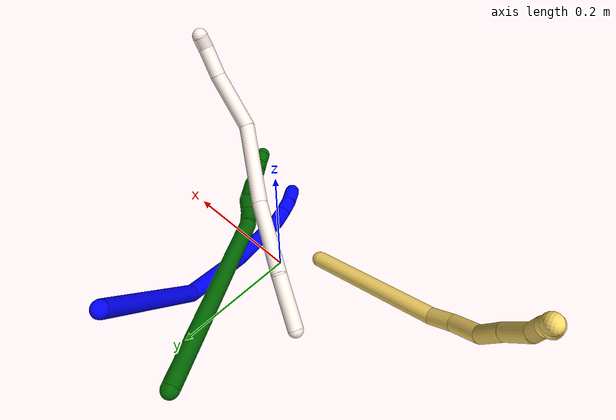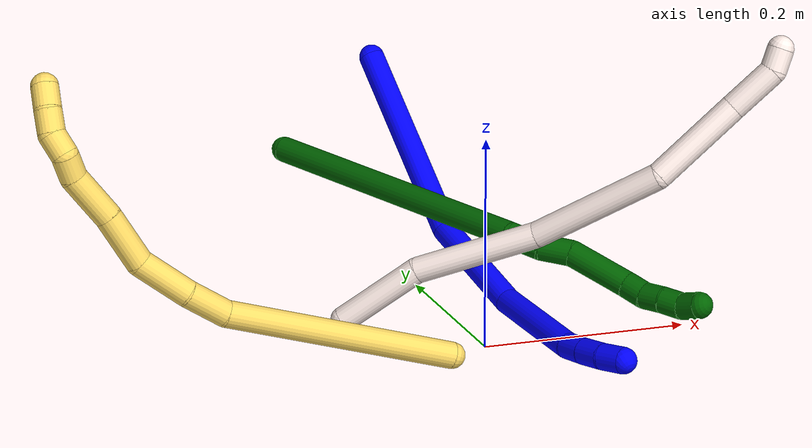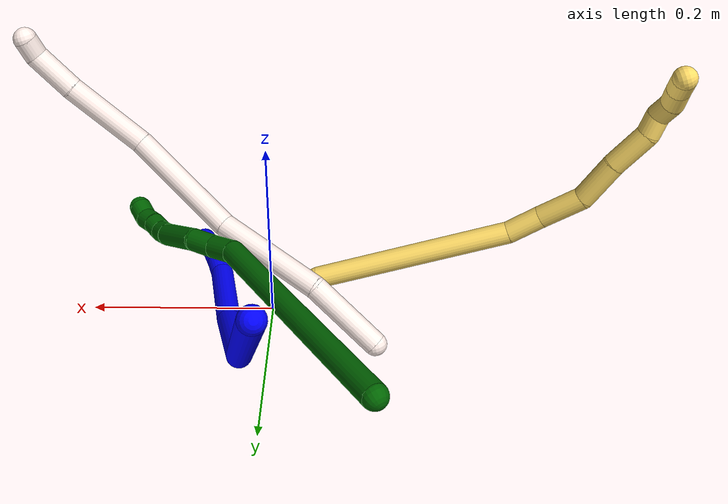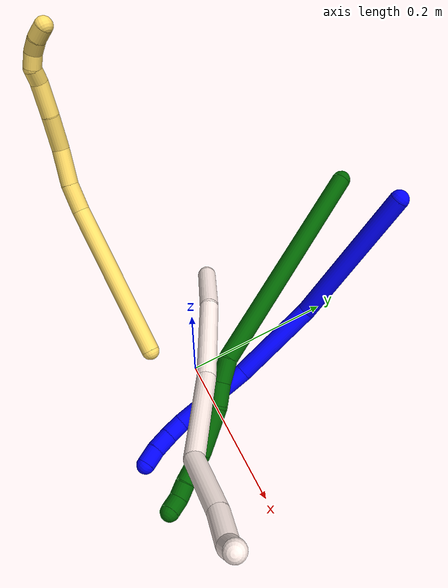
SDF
<sdf version="1.7">
 <world name="default">
  <model name="photoneo_s_sensor">
   <static>1</static>
   <pose>0 0 2 1.57079 1.57079 3.14159</pose>
   <link name="link">
    <inertial><mass>0.1</mass></inertial>
    <sensor name="sensor" type="depth">
     <update_rate>30</update_rate>
     <camera>
      <horizontal_fov>1.22</horizontal_fov>
      <image><width>1920</width><height>1200</height><format>B8G8R8</format></image>
      <clip><near>0.1</near><far>4</far></clip>
      <depth_camera><output>points</output></depth_camera>
     </camera>
     <plugin name="camera_plugin" filename="libgazebo_ros_depth_camera.so">
      <baseline>0.2</baseline>
      <alwaysOn>1</alwaysOn>
      <updateRate>0.0</updateRate>
      <cameraName>camera_ir</cameraName>
      <imageTopicName>/camera/color/image_raw</imageTopicName>
      <cameraInfoTopicName>/camera/color/camera_info</cameraInfoTopicName>
      <depthImageTopicName>/camera/depth/image_raw</depthImageTopicName>
      <depthImageCameraInfoTopicName>/camera/depth/camera_info</depthImageCameraInfoTopicName>
      <pointCloudTopicName>/camera/depth/points</pointCloudTopicName>
      <frameName>fr_optical</frameName>
      <pointCloudCutoff>0.1</pointCloudCutoff>
      <pointCloudCutoffMax>2.0</pointCloudCutoffMax>
      <distortionK1>0</distortionK1>
      <distortionK2>0</distortionK2>
      <distortionK3>0</distortionK3>
      <distortionT1>0</distortionT1>
      <distortionT2>0</distortionT2>
      <CxPrime>0</CxPrime>
      <Cx>0</Cx>
      <Cy>0</Cy>
      <focalLength>0</focalLength>
      <hackBaseline>0</hackBaseline>
     </plugin>
    </sensor>
   </link>
  </model>
  <model name="1">
   <static>0</static>
   <link name="1">
    <collision name="collision-cylinder-e_1_1_4">
     <pose>-0.007458 0.019913 -0.097555 -2.94024 -0.074769 0.70919</pose>
     <geometry><cylinder><radius>0.0125</radius><length>0.199692</length></cylinder></geometry>
     <surface>
      <friction><ode><mu>1.16</mu><mu2>1.16</mu2><slip1>0</slip1><slip2>0</slip2></ode></friction>
      <contact><ode><kp>1e+06</kp><kd>1</kd><max_vel>0</max_vel><min_depth>0.001</min_depth></ode></contact>
     </surface>
    </collision>
    <visual name="visual-cylinder-e_1_1_4">
     <pose>-0.007458 0.019913 -0.097555 -2.94024 -0.074769 0.70919</pose>
     <geometry><cylinder><radius>0.0125</radius><length>0.199692</length></cylinder></geometry>
     <material><ambient>0 0 1 1</ambient></material>
    </visual>
    <collision name="collision-cylinder-e_2_4_5">
     <pose>-0.015476 0.025177 -0.253186 2.8945 -0.009333 -0.075121</pose>
     <geometry><cylinder><radius>0.0125</radius><length>0.119795</length></cylinder></geometry>
     <surface>
      <friction><ode><mu>1.16</mu><mu2>1.16</mu2><slip1>0</slip1><slip2>0</slip2></ode></friction>
      <contact><ode><kp>1e+06</kp><kd>1</kd><max_vel>0</max_vel><min_depth>0.001</min_depth></ode></contact>
     </surface>
    </collision>
    <visual name="visual-cylinder-e_2_4_5">
     <pose>-0.015476 0.025177 -0.253186 2.8945 -0.009333 -0.075121</pose>
     <geometry><cylinder><radius>0.0125</radius><length>0.119795</length></cylinder></geometry>
     <material><ambient>0 0 1 1</ambient></material>
    </visual>
    <collision name="collision-cylinder-e_3_5_6">
     <pose>-0.016112 -0.014723 -0.358857 2.65384 -0.001436 -0.005772</pose>
     <geometry><cylinder><radius>0.0125</radius><length>0.107757</length></cylinder></geometry>
     <surface>
      <friction><ode><mu>1.16</mu><mu2>1.16</mu2><slip1>0</slip1><slip2>0</slip2></ode></friction>
      <contact><ode><kp>1e+06</kp><kd>1</kd><max_vel>0</max_vel><min_depth>0.001</min_depth></ode></contact>
     </surface>
    </collision>
    <visual name="visual-cylinder-e_3_5_6">
     <pose>-0.016112 -0.014723 -0.358857 2.65384 -0.001436 -0.005772</pose>
     <geometry><cylinder><radius>0.0125</radius><length>0.107757</length></cylinder></geometry>
     <material><ambient>0 0 1 1</ambient></material>
    </visual>
    <collision name="collision-cylinder-e_4_6_7">
     <pose>-0.014472 -0.046889 -0.415995 2.51441 0.144696 0.439745</pose>
     <geometry><cylinder><radius>0.0125</radius><length>0.02382</length></cylinder></geometry>
     <surface>
      <friction><ode><mu>1.16</mu><mu2>1.16</mu2><slip1>0</slip1><slip2>0</slip2></ode></friction>
      <contact><ode><kp>1e+06</kp><kd>1</kd><max_vel>0</max_vel><min_depth>0.001</min_depth></ode></contact>
     </surface>
    </collision>
    <visual name="visual-cylinder-e_4_6_7">
     <pose>-0.014472 -0.046889 -0.415995 2.51441 0.144696 0.439745</pose>
     <geometry><cylinder><radius>0.0125</radius><length>0.02382</length></cylinder></geometry>
     <material><ambient>0 0 1 1</ambient></material>
    </visual>
    <collision name="collision-cylinder-e_5_7_8">
     <pose>-0.010173 -0.061182 -0.435459 2.50223 0.205895 0.605022</pose>
     <geometry><cylinder><radius>0.0125</radius><length>0.025259</length></cylinder></geometry>
     <surface>
      <friction><ode><mu>1.16</mu><mu2>1.16</mu2><slip1>0</slip1><slip2>0</slip2></ode></friction>
      <contact><ode><kp>1e+06</kp><kd>1</kd><max_vel>0</max_vel><min_depth>0.001</min_depth></ode></contact>
     </surface>
    </collision>
    <visual name="visual-cylinder-e_5_7_8">
     <pose>-0.010173 -0.061182 -0.435459 2.50223 0.205895 0.605022</pose>
     <geometry><cylinder><radius>0.0125</radius><length>0.025259</length></cylinder></geometry>
     <material><ambient>0 0 1 1</ambient></material>
    </visual>
    <collision name="collision-cylinder-e_6_8_2">
     <pose>-0.00339 -0.074972 -0.4544 2.52353 0.362725 1.04275</pose>
     <geometry><cylinder><radius>0.0125</radius><length>0.023678</length></cylinder></geometry>
     <surface>
      <friction><ode><mu>1.16</mu><mu2>1.16</mu2><slip1>0</slip1><slip2>0</slip2></ode></friction>
      <contact><ode><kp>1e+06</kp><kd>1</kd><max_vel>0</max_vel><min_depth>0.001</min_depth></ode></contact>
     </surface>
    </collision>
    <visual name="visual-cylinder-e_6_8_2">
     <pose>-0.00339 -0.074972 -0.4544 2.52353 0.362725 1.04275</pose>
     <geometry><cylinder><radius>0.0125</radius><length>0.023678</length></cylinder></geometry>
     <material><ambient>0 0 1 1</ambient></material>
    </visual>
    <collision name="collision-sphere-2">
     <pose>0.00081 -0.081386 -0.463421 0 -0 0</pose>
     <geometry><sphere><radius>0.0125</radius></sphere></geometry>
     <surface>
      <friction><ode><mu>1.16</mu><mu2>1.16</mu2><slip1>0</slip1><slip2>0</slip2></ode></friction>
      <contact><ode><kp>1e+06</kp><kd>1</kd><max_vel>0</max_vel><min_depth>0.001</min_depth></ode></contact>
     </surface>
    </collision>
    <visual name="visual-sphere-2">
     <pose>0.00081 -0.081386 -0.463421 0 -0 0</pose>
     <geometry><sphere><radius>0.0125</radius></sphere></geometry>
     <material><ambient>0 0 1 1</ambient></material>
    </visual>
    <collision name="collision-sphere-4">
     <pose>-0.014917 0.039826 -0.19511 0 -0 0</pose>
     <geometry><sphere><radius>0.0125</radius></sphere></geometry>
     <surface>
      <friction><ode><mu>1.16</mu><mu2>1.16</mu2><slip1>0</slip1><slip2>0</slip2></ode></friction>
      <contact><ode><kp>1e+06</kp><kd>1</kd><max_vel>0</max_vel><min_depth>0.001</min_depth></ode></contact>
     </surface>
    </collision>
    <visual name="visual-sphere-4">
     <pose>-0.014917 0.039826 -0.19511 0 -0 0</pose>
     <geometry><sphere><radius>0.0125</radius></sphere></geometry>
     <material><ambient>0 0 1 1</ambient></material>
    </visual>
    <collision name="collision-sphere-1">
     <geometry><sphere><radius>0.0125</radius></sphere></geometry>
     <surface>
      <friction><ode><mu>1.16</mu><mu2>1.16</mu2><slip1>0</slip1><slip2>0</slip2></ode></friction>
      <contact><ode><kp>1e+06</kp><kd>1</kd><max_vel>0</max_vel><min_depth>0.001</min_depth></ode></contact>
     </surface>
    </collision>
    <visual name="visual-sphere-1">
     <geometry><sphere><radius>0.0125</radius></sphere></geometry>
     <material><ambient>0 0 1 1</ambient></material>
    </visual>
    <collision name="collision-sphere-8">
     <pose>-0.007591 -0.068559 -0.44538 0 -0 0</pose>
     <geometry><sphere><radius>0.0125</radius></sphere></geometry>
     <surface>
      <friction><ode><mu>1.16</mu><mu2>1.16</mu2><slip1>0</slip1><slip2>0</slip2></ode></friction>
      <contact><ode><kp>1e+06</kp><kd>1</kd><max_vel>0</max_vel><min_depth>0.001</min_depth></ode></contact>
     </surface>
    </collision>
    <visual name="visual-sphere-8">
     <pose>-0.007591 -0.068559 -0.44538 0 -0 0</pose>
     <geometry><sphere><radius>0.0125</radius></sphere></geometry>
     <material><ambient>0 0 1 1</ambient></material>
    </visual>
    <collision name="collision-sphere-5">
     <pose>-0.016035 0.010527 -0.311262 0 -0 0</pose>
     <geometry><sphere><radius>0.0125</radius></sphere></geometry>
     <surface>
      <friction><ode><mu>1.16</mu><mu2>1.16</mu2><slip1>0</slip1><slip2>0</slip2></ode></friction>
      <contact><ode><kp>1e+06</kp><kd>1</kd><max_vel>0</max_vel><min_depth>0.001</min_depth></ode></contact>
     </surface>
    </collision>
    <visual name="visual-sphere-5">
     <pose>-0.016035 0.010527 -0.311262 0 -0 0</pose>
     <geometry><sphere><radius>0.0125</radius></sphere></geometry>
     <material><ambient>0 0 1 1</ambient></material>
    </visual>
    <collision name="collision-sphere-6">
     <pose>-0.01619 -0.039972 -0.406453 0 -0 0</pose>
     <geometry><sphere><radius>0.0125</radius></sphere></geometry>
     <surface>
      <friction><ode><mu>1.16</mu><mu2>1.16</mu2><slip1>0</slip1><slip2>0</slip2></ode></friction>
      <contact><ode><kp>1e+06</kp><kd>1</kd><max_vel>0</max_vel><min_depth>0.001</min_depth></ode></contact>
     </surface>
    </collision>
    <visual name="visual-sphere-6">
     <pose>-0.01619 -0.039972 -0.406453 0 -0 0</pose>
     <geometry><sphere><radius>0.0125</radius></sphere></geometry>
     <material><ambient>0 0 1 1</ambient></material>
    </visual>
    <collision name="collision-sphere-7">
     <pose>-0.012755 -0.053805 -0.425538 0 -0 0</pose>
     <geometry><sphere><radius>0.0125</radius></sphere></geometry>
     <surface>
      <friction><ode><mu>1.16</mu><mu2>1.16</mu2><slip1>0</slip1><slip2>0</slip2></ode></friction>
      <contact><ode><kp>1e+06</kp><kd>1</kd><max_vel>0</max_vel><min_depth>0.001</min_depth></ode></contact>
     </surface>
    </collision>
    <visual name="visual-sphere-7">
     <pose>-0.012755 -0.053805 -0.425538 0 -0 0</pose>
     <geometry><sphere><radius>0.0125</radius></sphere></geometry>
     <material><ambient>0 0 1 1</ambient></material>
    </visual>
    <inertial>
     <pose>-0.011523 0.001937 -0.240296 0 -0 0</pose>
     <mass>0.5</mass>
     <inertia>
      <ixx>0.001197</ixx>
      <ixy>0</ixy>
      <ixz>0</ixz>
      <iyy>-0.000313</iyy>
      <iyz>0</iyz>
      <izz>-2.9e-05</izz>
     </inertia>
    </inertial>
   </link>
   <pose>-0.013926 0.295284 0.211845 -0.960023 -0.160067 0.170393</pose>
  </model>
  <model name="5">
   <static>0</static>
   <link name="5">
    <collision name="collision-cylinder-e_1_1_4">
     <pose>0.007124 -0.00416 0.111038 0.037448 0.064027 0.001199</pose>
     <geometry><cylinder><radius>0.0125</radius><length>0.222689</length></cylinder></geometry>
     <surface>
      <friction><ode><mu>1.16</mu><mu2>1.16</mu2><slip1>0</slip1><slip2>0</slip2></ode></friction>
      <contact><ode><kp>1e+06</kp><kd>1</kd><max_vel>0</max_vel><min_depth>0.001</min_depth></ode></contact>
     </surface>
    </collision>
    <visual name="visual-cylinder-e_1_1_4">
     <pose>0.007124 -0.00416 0.111038 0.037448 0.064027 0.001199</pose>
     <geometry><cylinder><radius>0.0125</radius><length>0.222689</length></cylinder></geometry>
     <material><ambient>1 0.858824 0.4 1</ambient></material>
    </visual>
    <collision name="collision-cylinder-e_2_4_5">
     <pose>0.010468 -0.006568 0.241735 -0.088918 -0.189257 0.008445</pose>
     <geometry><cylinder><radius>0.0125</radius><length>0.040191</length></cylinder></geometry>
     <surface>
      <friction><ode><mu>1.16</mu><mu2>1.16</mu2><slip1>0</slip1><slip2>0</slip2></ode></friction>
      <contact><ode><kp>1e+06</kp><kd>1</kd><max_vel>0</max_vel><min_depth>0.001</min_depth></ode></contact>
     </surface>
    </collision>
    <visual name="visual-cylinder-e_2_4_5">
     <pose>0.010468 -0.006568 0.241735 -0.088918 -0.189257 0.008445</pose>
     <geometry><cylinder><radius>0.0125</radius><length>0.040191</length></cylinder></geometry>
     <material><ambient>1 0.858824 0.4 1</ambient></material>
    </visual>
    <collision name="collision-cylinder-e_3_5_6">
     <pose>-0.001662 -0.004897 0.285721 0.003363 -0.330615 -0.000561</pose>
     <geometry><cylinder><radius>0.0125</radius><length>0.051441</length></cylinder></geometry>
     <surface>
      <friction><ode><mu>1.16</mu><mu2>1.16</mu2><slip1>0</slip1><slip2>0</slip2></ode></friction>
      <contact><ode><kp>1e+06</kp><kd>1</kd><max_vel>0</max_vel><min_depth>0.001</min_depth></ode></contact>
     </surface>
    </collision>
    <visual name="visual-cylinder-e_3_5_6">
     <pose>-0.001662 -0.004897 0.285721 0.003363 -0.330615 -0.000561</pose>
     <geometry><cylinder><radius>0.0125</radius><length>0.051441</length></cylinder></geometry>
     <material><ambient>1 0.858824 0.4 1</ambient></material>
    </visual>
    <collision name="collision-cylinder-e_4_6_7">
     <pose>-0.024286 0.001874 0.329888 -0.332586 -0.597216 0.103236</pose>
     <geometry><cylinder><radius>0.0125</radius><length>0.050767</length></cylinder></geometry>
     <surface>
      <friction><ode><mu>1.16</mu><mu2>1.16</mu2><slip1>0</slip1><slip2>0</slip2></ode></friction>
      <contact><ode><kp>1e+06</kp><kd>1</kd><max_vel>0</max_vel><min_depth>0.001</min_depth></ode></contact>
     </surface>
    </collision>
    <visual name="visual-cylinder-e_4_6_7">
     <pose>-0.024286 0.001874 0.329888 -0.332586 -0.597216 0.103236</pose>
     <geometry><cylinder><radius>0.0125</radius><length>0.050767</length></cylinder></geometry>
     <material><ambient>1 0.858824 0.4 1</ambient></material>
    </visual>
    <collision name="collision-cylinder-e_5_7_8">
     <pose>-0.049837 0.014004 0.369868 -0.256249 -0.496389 0.065273</pose>
     <geometry><cylinder><radius>0.0125</radius><length>0.047357</length></cylinder></geometry>
     <surface>
      <friction><ode><mu>1.16</mu><mu2>1.16</mu2><slip1>0</slip1><slip2>0</slip2></ode></friction>
      <contact><ode><kp>1e+06</kp><kd>1</kd><max_vel>0</max_vel><min_depth>0.001</min_depth></ode></contact>
     </surface>
    </collision>
    <visual name="visual-cylinder-e_5_7_8">
     <pose>-0.049837 0.014004 0.369868 -0.256249 -0.496389 0.065273</pose>
     <geometry><cylinder><radius>0.0125</radius><length>0.047357</length></cylinder></geometry>
     <material><ambient>1 0.858824 0.4 1</ambient></material>
    </visual>
    <collision name="collision-cylinder-e_6_8_9">
     <pose>-0.067774 0.024666 0.397174 -0.644507 -0.639028 0.220044</pose>
     <geometry><cylinder><radius>0.0125</radius><length>0.022333</length></cylinder></geometry>
     <surface>
      <friction><ode><mu>1.16</mu><mu2>1.16</mu2><slip1>0</slip1><slip2>0</slip2></ode></friction>
      <contact><ode><kp>1e+06</kp><kd>1</kd><max_vel>0</max_vel><min_depth>0.001</min_depth></ode></contact>
     </surface>
    </collision>
    <visual name="visual-cylinder-e_6_8_9">
     <pose>-0.067774 0.024666 0.397174 -0.644507 -0.639028 0.220044</pose>
     <geometry><cylinder><radius>0.0125</radius><length>0.022333</length></cylinder></geometry>
     <material><ambient>1 0.858824 0.4 1</ambient></material>
    </visual>
    <collision name="collision-cylinder-e_7_9_10">
     <pose>-0.082229 0.029918 0.411563 0.018449 -0.823286 -0.008055</pose>
     <geometry><cylinder><radius>0.0125</radius><length>0.021258</length></cylinder></geometry>
     <surface>
      <friction><ode><mu>1.16</mu><mu2>1.16</mu2><slip1>0</slip1><slip2>0</slip2></ode></friction>
      <contact><ode><kp>1e+06</kp><kd>1</kd><max_vel>0</max_vel><min_depth>0.001</min_depth></ode></contact>
     </surface>
    </collision>
    <visual name="visual-cylinder-e_7_9_10">
     <pose>-0.082229 0.029918 0.411563 0.018449 -0.823286 -0.008055</pose>
     <geometry><cylinder><radius>0.0125</radius><length>0.021258</length></cylinder></geometry>
     <material><ambient>1 0.858824 0.4 1</ambient></material>
    </visual>
    <collision name="collision-cylinder-e_8_10_11">
     <pose>-0.100291 0.030746 0.422614 -0.246193 -1.20397 0.169601</pose>
     <geometry><cylinder><radius>0.0125</radius><length>0.021999</length></cylinder></geometry>
     <surface>
      <friction><ode><mu>1.16</mu><mu2>1.16</mu2><slip1>0</slip1><slip2>0</slip2></ode></friction>
      <contact><ode><kp>1e+06</kp><kd>1</kd><max_vel>0</max_vel><min_depth>0.001</min_depth></ode></contact>
     </surface>
    </collision>
    <visual name="visual-cylinder-e_8_10_11">
     <pose>-0.100291 0.030746 0.422614 -0.246193 -1.20397 0.169601</pose>
     <geometry><cylinder><radius>0.0125</radius><length>0.021999</length></cylinder></geometry>
     <material><ambient>1 0.858824 0.4 1</ambient></material>
    </visual>
    <collision name="collision-cylinder-e_9_11_2">
     <pose>-0.121144 0.030839 0.429239 0.300912 -1.30066 -0.229641</pose>
     <geometry><cylinder><radius>0.0125</radius><length>0.021967</length></cylinder></geometry>
     <surface>
      <friction><ode><mu>1.16</mu><mu2>1.16</mu2><slip1>0</slip1><slip2>0</slip2></ode></friction>
      <contact><ode><kp>1e+06</kp><kd>1</kd><max_vel>0</max_vel><min_depth>0.001</min_depth></ode></contact>
     </surface>
    </collision>
    <visual name="visual-cylinder-e_9_11_2">
     <pose>-0.121144 0.030839 0.429239 0.300912 -1.30066 -0.229641</pose>
     <geometry><cylinder><radius>0.0125</radius><length>0.021967</length></cylinder></geometry>
     <material><ambient>1 0.858824 0.4 1</ambient></material>
    </visual>
    <collision name="collision-sphere-2">
     <pose>-0.131729 0.02997 0.432038 0 -0 0</pose>
     <geometry><sphere><radius>0.0125</radius></sphere></geometry>
     <surface>
      <friction><ode><mu>1.16</mu><mu2>1.16</mu2><slip1>0</slip1><slip2>0</slip2></ode></friction>
      <contact><ode><kp>1e+06</kp><kd>1</kd><max_vel>0</max_vel><min_depth>0.001</min_depth></ode></contact>
     </surface>
    </collision>
    <visual name="visual-sphere-2">
     <pose>-0.131729 0.02997 0.432038 0 -0 0</pose>
     <geometry><sphere><radius>0.0125</radius></sphere></geometry>
     <material><ambient>1 0.858824 0.4 1</ambient></material>
    </visual>
    <collision name="collision-sphere-11">
     <pose>-0.110559 0.031708 0.42644 0 -0 0</pose>
     <geometry><sphere><radius>0.0125</radius></sphere></geometry>
     <surface>
      <friction><ode><mu>1.16</mu><mu2>1.16</mu2><slip1>0</slip1><slip2>0</slip2></ode></friction>
      <contact><ode><kp>1e+06</kp><kd>1</kd><max_vel>0</max_vel><min_depth>0.001</min_depth></ode></contact>
     </surface>
    </collision>
    <visual name="visual-sphere-11">
     <pose>-0.110559 0.031708 0.42644 0 -0 0</pose>
     <geometry><sphere><radius>0.0125</radius></sphere></geometry>
     <material><ambient>1 0.858824 0.4 1</ambient></material>
    </visual>
    <collision name="collision-sphere-10">
     <pose>-0.090023 0.029785 0.418788 0 -0 0</pose>
     <geometry><sphere><radius>0.0125</radius></sphere></geometry>
     <surface>
      <friction><ode><mu>1.16</mu><mu2>1.16</mu2><slip1>0</slip1><slip2>0</slip2></ode></friction>
      <contact><ode><kp>1e+06</kp><kd>1</kd><max_vel>0</max_vel><min_depth>0.001</min_depth></ode></contact>
     </surface>
    </collision>
    <visual name="visual-sphere-10">
     <pose>-0.090023 0.029785 0.418788 0 -0 0</pose>
     <geometry><sphere><radius>0.0125</radius></sphere></geometry>
     <material><ambient>1 0.858824 0.4 1</ambient></material>
    </visual>
    <collision name="collision-sphere-9">
     <pose>-0.074434 0.030051 0.404339 0 -0 0</pose>
     <geometry><sphere><radius>0.0125</radius></sphere></geometry>
     <surface>
      <friction><ode><mu>1.16</mu><mu2>1.16</mu2><slip1>0</slip1><slip2>0</slip2></ode></friction>
      <contact><ode><kp>1e+06</kp><kd>1</kd><max_vel>0</max_vel><min_depth>0.001</min_depth></ode></contact>
     </surface>
    </collision>
    <visual name="visual-sphere-9">
     <pose>-0.074434 0.030051 0.404339 0 -0 0</pose>
     <geometry><sphere><radius>0.0125</radius></sphere></geometry>
     <material><ambient>1 0.858824 0.4 1</ambient></material>
    </visual>
    <collision name="collision-sphere-4">
     <pose>0.014248 -0.00832 0.222076 0 -0 0</pose>
     <geometry><sphere><radius>0.0125</radius></sphere></geometry>
     <surface>
      <friction><ode><mu>1.16</mu><mu2>1.16</mu2><slip1>0</slip1><slip2>0</slip2></ode></friction>
      <contact><ode><kp>1e+06</kp><kd>1</kd><max_vel>0</max_vel><min_depth>0.001</min_depth></ode></contact>
     </surface>
    </collision>
    <visual name="visual-sphere-4">
     <pose>0.014248 -0.00832 0.222076 0 -0 0</pose>
     <geometry><sphere><radius>0.0125</radius></sphere></geometry>
     <material><ambient>1 0.858824 0.4 1</ambient></material>
    </visual>
    <collision name="collision-sphere-1">
     <geometry><sphere><radius>0.0125</radius></sphere></geometry>
     <surface>
      <friction><ode><mu>1.16</mu><mu2>1.16</mu2><slip1>0</slip1><slip2>0</slip2></ode></friction>
      <contact><ode><kp>1e+06</kp><kd>1</kd><max_vel>0</max_vel><min_depth>0.001</min_depth></ode></contact>
     </surface>
    </collision>
    <visual name="visual-sphere-1">
     <geometry><sphere><radius>0.0125</radius></sphere></geometry>
     <material><ambient>1 0.858824 0.4 1</ambient></material>
    </visual>
    <collision name="collision-sphere-8">
     <pose>-0.061114 0.019281 0.390009 0 -0 0</pose>
     <geometry><sphere><radius>0.0125</radius></sphere></geometry>
     <surface>
      <friction><ode><mu>1.16</mu><mu2>1.16</mu2><slip1>0</slip1><slip2>0</slip2></ode></friction>
      <contact><ode><kp>1e+06</kp><kd>1</kd><max_vel>0</max_vel><min_depth>0.001</min_depth></ode></contact>
     </surface>
    </collision>
    <visual name="visual-sphere-8">
     <pose>-0.061114 0.019281 0.390009 0 -0 0</pose>
     <geometry><sphere><radius>0.0125</radius></sphere></geometry>
     <material><ambient>1 0.858824 0.4 1</ambient></material>
    </visual>
    <collision name="collision-sphere-5">
     <pose>0.006687 -0.004815 0.261394 0 -0 0</pose>
     <geometry><sphere><radius>0.0125</radius></sphere></geometry>
     <surface>
      <friction><ode><mu>1.16</mu><mu2>1.16</mu2><slip1>0</slip1><slip2>0</slip2></ode></friction>
      <contact><ode><kp>1e+06</kp><kd>1</kd><max_vel>0</max_vel><min_depth>0.001</min_depth></ode></contact>
     </surface>
    </collision>
    <visual name="visual-sphere-5">
     <pose>0.006687 -0.004815 0.261394 0 -0 0</pose>
     <geometry><sphere><radius>0.0125</radius></sphere></geometry>
     <material><ambient>1 0.858824 0.4 1</ambient></material>
    </visual>
    <collision name="collision-sphere-6">
     <pose>-0.010012 -0.004979 0.310048 0 -0 0</pose>
     <geometry><sphere><radius>0.0125</radius></sphere></geometry>
     <surface>
      <friction><ode><mu>1.16</mu><mu2>1.16</mu2><slip1>0</slip1><slip2>0</slip2></ode></friction>
      <contact><ode><kp>1e+06</kp><kd>1</kd><max_vel>0</max_vel><min_depth>0.001</min_depth></ode></contact>
     </surface>
    </collision>
    <visual name="visual-sphere-6">
     <pose>-0.010012 -0.004979 0.310048 0 -0 0</pose>
     <geometry><sphere><radius>0.0125</radius></sphere></geometry>
     <material><ambient>1 0.858824 0.4 1</ambient></material>
    </visual>
    <collision name="collision-sphere-7">
     <pose>-0.03856 0.008727 0.349727 0 -0 0</pose>
     <geometry><sphere><radius>0.0125</radius></sphere></geometry>
     <surface>
      <friction><ode><mu>1.16</mu><mu2>1.16</mu2><slip1>0</slip1><slip2>0</slip2></ode></friction>
      <contact><ode><kp>1e+06</kp><kd>1</kd><max_vel>0</max_vel><min_depth>0.001</min_depth></ode></contact>
     </surface>
    </collision>
    <visual name="visual-sphere-7">
     <pose>-0.03856 0.008727 0.349727 0 -0 0</pose>
     <geometry><sphere><radius>0.0125</radius></sphere></geometry>
     <material><ambient>1 0.858824 0.4 1</ambient></material>
    </visual>
    <inertial>
     <pose>-0.019601 0.003713 0.239496 0 -0 0</pose>
     <mass>0.5</mass>
     <inertia>
      <ixx>0.000963</ixx>
      <ixy>0</ixy>
      <ixz>0</ixz>
      <iyy>0.000984</iyy>
      <iyz>0</iyz>
      <izz>2.5e-05</izz>
     </inertia>
    </inertial>
   </link>
   <pose>-0.04879 -0.04517 0.011983 0.967243 0.89589 -2.06408</pose>
  </model>
  <model name="6">
   <static>0</static>
   <link name="6">
    <collision name="collision-cylinder-e_1_1_4">
     <pose>0.052969 -0.046901 -0.129016 2.79292 0.368252 1.62658</pose>
     <geometry><cylinder><radius>0.0125</radius><length>0.294282</length></cylinder></geometry>
     <surface>
      <friction><ode><mu>1.16</mu><mu2>1.16</mu2><slip1>0</slip1><slip2>0</slip2></ode></friction>
      <contact><ode><kp>1e+06</kp><kd>1</kd><max_vel>0</max_vel><min_depth>0.001</min_depth></ode></contact>
     </surface>
    </collision>
    <visual name="visual-cylinder-e_1_1_4">
     <pose>0.052969 -0.046901 -0.129016 2.79292 0.368252 1.62658</pose>
     <geometry><cylinder><radius>0.0125</radius><length>0.294282</length></cylinder></geometry>
     <material><ambient>0 0.392157 0.003922 1</ambient></material>
    </visual>
    <collision name="collision-cylinder-e_2_4_5">
     <pose>0.109719 -0.103392 -0.27057 2.48865 0.235146 0.671306</pose>
     <geometry><cylinder><radius>0.0125</radius><length>0.032463</length></cylinder></geometry>
     <surface>
      <friction><ode><mu>1.16</mu><mu2>1.16</mu2><slip1>0</slip1><slip2>0</slip2></ode></friction>
      <contact><ode><kp>1e+06</kp><kd>1</kd><max_vel>0</max_vel><min_depth>0.001</min_depth></ode></contact>
     </surface>
    </collision>
    <visual name="visual-cylinder-e_2_4_5">
     <pose>0.109719 -0.103392 -0.27057 2.48865 0.235146 0.671306</pose>
     <geometry><cylinder><radius>0.0125</radius><length>0.032463</length></cylinder></geometry>
     <material><ambient>0 0.392157 0.003922 1</ambient></material>
    </visual>
    <collision name="collision-cylinder-e_3_5_6">
     <pose>0.114206 -0.121691 -0.295589 2.53234 0.046351 0.147183</pose>
     <geometry><cylinder><radius>0.0125</radius><length>0.030473</length></cylinder></geometry>
     <surface>
      <friction><ode><mu>1.16</mu><mu2>1.16</mu2><slip1>0</slip1><slip2>0</slip2></ode></friction>
      <contact><ode><kp>1e+06</kp><kd>1</kd><max_vel>0</max_vel><min_depth>0.001</min_depth></ode></contact>
     </surface>
    </collision>
    <visual name="visual-cylinder-e_3_5_6">
     <pose>0.114206 -0.121691 -0.295589 2.53234 0.046351 0.147183</pose>
     <geometry><cylinder><radius>0.0125</radius><length>0.030473</length></cylinder></geometry>
     <material><ambient>0 0.392157 0.003922 1</ambient></material>
    </visual>
    <collision name="collision-cylinder-e_4_6_7">
     <pose>0.125815 -0.148612 -0.330077 2.45029 0.3646 0.946271</pose>
     <geometry><cylinder><radius>0.0125</radius><length>0.061149</length></cylinder></geometry>
     <surface>
      <friction><ode><mu>1.16</mu><mu2>1.16</mu2><slip1>0</slip1><slip2>0</slip2></ode></friction>
      <contact><ode><kp>1e+06</kp><kd>1</kd><max_vel>0</max_vel><min_depth>0.001</min_depth></ode></contact>
     </surface>
    </collision>
    <visual name="visual-cylinder-e_4_6_7">
     <pose>0.125815 -0.148612 -0.330077 2.45029 0.3646 0.946271</pose>
     <geometry><cylinder><radius>0.0125</radius><length>0.061149</length></cylinder></geometry>
     <material><ambient>0 0.392157 0.003922 1</ambient></material>
    </visual>
    <collision name="collision-cylinder-e_5_7_8">
     <pose>0.141462 -0.171874 -0.360189 2.58431 0.461179 1.37436</pose>
     <geometry><cylinder><radius>0.0125</radius><length>0.021327</length></cylinder></geometry>
     <surface>
      <friction><ode><mu>1.16</mu><mu2>1.16</mu2><slip1>0</slip1><slip2>0</slip2></ode></friction>
      <contact><ode><kp>1e+06</kp><kd>1</kd><max_vel>0</max_vel><min_depth>0.001</min_depth></ode></contact>
     </surface>
    </collision>
    <visual name="visual-cylinder-e_5_7_8">
     <pose>0.141462 -0.171874 -0.360189 2.58431 0.461179 1.37436</pose>
     <geometry><cylinder><radius>0.0125</radius><length>0.021327</length></cylinder></geometry>
     <material><ambient>0 0.392157 0.003922 1</ambient></material>
    </visual>
    <collision name="collision-cylinder-e_6_8_9">
     <pose>0.148757 -0.179975 -0.377501 2.82172 0.257002 1.35071</pose>
     <geometry><cylinder><radius>0.0125</radius><length>0.020059</length></cylinder></geometry>
     <surface>
      <friction><ode><mu>1.16</mu><mu2>1.16</mu2><slip1>0</slip1><slip2>0</slip2></ode></friction>
      <contact><ode><kp>1e+06</kp><kd>1</kd><max_vel>0</max_vel><min_depth>0.001</min_depth></ode></contact>
     </surface>
    </collision>
    <visual name="visual-cylinder-e_6_8_9">
     <pose>0.148757 -0.179975 -0.377501 2.82172 0.257002 1.35071</pose>
     <geometry><cylinder><radius>0.0125</radius><length>0.020059</length></cylinder></geometry>
     <material><ambient>0 0.392157 0.003922 1</ambient></material>
    </visual>
    <collision name="collision-cylinder-e_7_9_10">
     <pose>0.153945 -0.187479 -0.39538 2.66707 0.264376 1.00547</pose>
     <geometry><cylinder><radius>0.0125</radius><length>0.020198</length></cylinder></geometry>
     <surface>
      <friction><ode><mu>1.16</mu><mu2>1.16</mu2><slip1>0</slip1><slip2>0</slip2></ode></friction>
      <contact><ode><kp>1e+06</kp><kd>1</kd><max_vel>0</max_vel><min_depth>0.001</min_depth></ode></contact>
     </surface>
    </collision>
    <visual name="visual-cylinder-e_7_9_10">
     <pose>0.153945 -0.187479 -0.39538 2.66707 0.264376 1.00547</pose>
     <geometry><cylinder><radius>0.0125</radius><length>0.020198</length></cylinder></geometry>
     <material><ambient>0 0.392157 0.003922 1</ambient></material>
    </visual>
    <collision name="collision-cylinder-e_8_10_2">
     <pose>0.157876 -0.192718 -0.413961 3.06254 0.129282 2.04473</pose>
     <geometry><cylinder><radius>0.0125</radius><length>0.02005</length></cylinder></geometry>
     <surface>
      <friction><ode><mu>1.16</mu><mu2>1.16</mu2><slip1>0</slip1><slip2>0</slip2></ode></friction>
      <contact><ode><kp>1e+06</kp><kd>1</kd><max_vel>0</max_vel><min_depth>0.001</min_depth></ode></contact>
     </surface>
    </collision>
    <visual name="visual-cylinder-e_8_10_2">
     <pose>0.157876 -0.192718 -0.413961 3.06254 0.129282 2.04473</pose>
     <geometry><cylinder><radius>0.0125</radius><length>0.02005</length></cylinder></geometry>
     <material><ambient>0 0.392157 0.003922 1</ambient></material>
    </visual>
    <collision name="collision-sphere-2">
     <pose>0.159169 -0.193503 -0.423871 0 -0 0</pose>
     <geometry><sphere><radius>0.0125</radius></sphere></geometry>
     <surface>
      <friction><ode><mu>1.16</mu><mu2>1.16</mu2><slip1>0</slip1><slip2>0</slip2></ode></friction>
      <contact><ode><kp>1e+06</kp><kd>1</kd><max_vel>0</max_vel><min_depth>0.001</min_depth></ode></contact>
     </surface>
    </collision>
    <visual name="visual-sphere-2">
     <pose>0.159169 -0.193503 -0.423871 0 -0 0</pose>
     <geometry><sphere><radius>0.0125</radius></sphere></geometry>
     <material><ambient>0 0.392157 0.003922 1</ambient></material>
    </visual>
    <collision name="collision-sphere-10">
     <pose>0.156584 -0.191933 -0.404051 0 -0 0</pose>
     <geometry><sphere><radius>0.0125</radius></sphere></geometry>
     <surface>
      <friction><ode><mu>1.16</mu><mu2>1.16</mu2><slip1>0</slip1><slip2>0</slip2></ode></friction>
      <contact><ode><kp>1e+06</kp><kd>1</kd><max_vel>0</max_vel><min_depth>0.001</min_depth></ode></contact>
     </surface>
    </collision>
    <visual name="visual-sphere-10">
     <pose>0.156584 -0.191933 -0.404051 0 -0 0</pose>
     <geometry><sphere><radius>0.0125</radius></sphere></geometry>
     <material><ambient>0 0.392157 0.003922 1</ambient></material>
    </visual>
    <collision name="collision-sphere-9">
     <pose>0.151306 -0.183025 -0.386709 0 -0 0</pose>
     <geometry><sphere><radius>0.0125</radius></sphere></geometry>
     <surface>
      <friction><ode><mu>1.16</mu><mu2>1.16</mu2><slip1>0</slip1><slip2>0</slip2></ode></friction>
      <contact><ode><kp>1e+06</kp><kd>1</kd><max_vel>0</max_vel><min_depth>0.001</min_depth></ode></contact>
     </surface>
    </collision>
    <visual name="visual-sphere-9">
     <pose>0.151306 -0.183025 -0.386709 0 -0 0</pose>
     <geometry><sphere><radius>0.0125</radius></sphere></geometry>
     <material><ambient>0 0.392157 0.003922 1</ambient></material>
    </visual>
    <collision name="collision-sphere-4">
     <pose>0.105937 -0.093802 -0.258032 0 -0 0</pose>
     <geometry><sphere><radius>0.0125</radius></sphere></geometry>
     <surface>
      <friction><ode><mu>1.16</mu><mu2>1.16</mu2><slip1>0</slip1><slip2>0</slip2></ode></friction>
      <contact><ode><kp>1e+06</kp><kd>1</kd><max_vel>0</max_vel><min_depth>0.001</min_depth></ode></contact>
     </surface>
    </collision>
    <visual name="visual-sphere-4">
     <pose>0.105937 -0.093802 -0.258032 0 -0 0</pose>
     <geometry><sphere><radius>0.0125</radius></sphere></geometry>
     <material><ambient>0 0.392157 0.003922 1</ambient></material>
    </visual>
    <collision name="collision-sphere-1">
     <geometry><sphere><radius>0.0125</radius></sphere></geometry>
     <surface>
      <friction><ode><mu>1.16</mu><mu2>1.16</mu2><slip1>0</slip1><slip2>0</slip2></ode></friction>
      <contact><ode><kp>1e+06</kp><kd>1</kd><max_vel>0</max_vel><min_depth>0.001</min_depth></ode></contact>
     </surface>
    </collision>
    <visual name="visual-sphere-1">
     <geometry><sphere><radius>0.0125</radius></sphere></geometry>
     <material><ambient>0 0.392157 0.003922 1</ambient></material>
    </visual>
    <collision name="collision-sphere-8">
     <pose>0.146207 -0.176924 -0.368293 0 -0 0</pose>
     <geometry><sphere><radius>0.0125</radius></sphere></geometry>
     <surface>
      <friction><ode><mu>1.16</mu><mu2>1.16</mu2><slip1>0</slip1><slip2>0</slip2></ode></friction>
      <contact><ode><kp>1e+06</kp><kd>1</kd><max_vel>0</max_vel><min_depth>0.001</min_depth></ode></contact>
     </surface>
    </collision>
    <visual name="visual-sphere-8">
     <pose>0.146207 -0.176924 -0.368293 0 -0 0</pose>
     <geometry><sphere><radius>0.0125</radius></sphere></geometry>
     <material><ambient>0 0.392157 0.003922 1</ambient></material>
    </visual>
    <collision name="collision-sphere-5">
     <pose>0.1135 -0.112981 -0.283107 0 -0 0</pose>
     <geometry><sphere><radius>0.0125</radius></sphere></geometry>
     <surface>
      <friction><ode><mu>1.16</mu><mu2>1.16</mu2><slip1>0</slip1><slip2>0</slip2></ode></friction>
      <contact><ode><kp>1e+06</kp><kd>1</kd><max_vel>0</max_vel><min_depth>0.001</min_depth></ode></contact>
     </surface>
    </collision>
    <visual name="visual-sphere-5">
     <pose>0.1135 -0.112981 -0.283107 0 -0 0</pose>
     <geometry><sphere><radius>0.0125</radius></sphere></geometry>
     <material><ambient>0 0.392157 0.003922 1</ambient></material>
    </visual>
    <collision name="collision-sphere-6">
     <pose>0.114912 -0.130401 -0.308071 0 -0 0</pose>
     <geometry><sphere><radius>0.0125</radius></sphere></geometry>
     <surface>
      <friction><ode><mu>1.16</mu><mu2>1.16</mu2><slip1>0</slip1><slip2>0</slip2></ode></friction>
      <contact><ode><kp>1e+06</kp><kd>1</kd><max_vel>0</max_vel><min_depth>0.001</min_depth></ode></contact>
     </surface>
    </collision>
    <visual name="visual-sphere-6">
     <pose>0.114912 -0.130401 -0.308071 0 -0 0</pose>
     <geometry><sphere><radius>0.0125</radius></sphere></geometry>
     <material><ambient>0 0.392157 0.003922 1</ambient></material>
    </visual>
    <collision name="collision-sphere-7">
     <pose>0.136717 -0.166823 -0.352084 0 -0 0</pose>
     <geometry><sphere><radius>0.0125</radius></sphere></geometry>
     <surface>
      <friction><ode><mu>1.16</mu><mu2>1.16</mu2><slip1>0</slip1><slip2>0</slip2></ode></friction>
      <contact><ode><kp>1e+06</kp><kd>1</kd><max_vel>0</max_vel><min_depth>0.001</min_depth></ode></contact>
     </surface>
    </collision>
    <visual name="visual-sphere-7">
     <pose>0.136717 -0.166823 -0.352084 0 -0 0</pose>
     <geometry><sphere><radius>0.0125</radius></sphere></geometry>
     <material><ambient>0 0.392157 0.003922 1</ambient></material>
    </visual>
    <inertial>
     <pose>0.085197 -0.089761 -0.214963 0 -0 0</pose>
     <mass>0.5</mass>
     <inertia>
      <ixx>0.001934</ixx>
      <ixy>0</ixy>
      <ixz>0</ixz>
      <iyy>0.002362</iyy>
      <iyz>0</iyz>
      <izz>-0.000112</izz>
     </inertia>
    </inertial>
   </link>
   <pose>-0.109282 0.285125 0.127408 2.08613 0.672501 -2.23379</pose>
  </model>
  <model name="11">
   <static>0</static>
   <link name="11">
    <collision name="collision-cylinder-e_1_1_4">
     <pose>0.024673 -0.002582 0.035375 0.072861 0.607787 0.022859</pose>
     <geometry><cylinder><radius>0.0125</radius><length>0.086413</length></cylinder></geometry>
     <surface>
      <friction><ode><mu>1.16</mu><mu2>1.16</mu2><slip1>0</slip1><slip2>0</slip2></ode></friction>
      <contact><ode><kp>1e+06</kp><kd>1</kd><max_vel>0</max_vel><min_depth>0.001</min_depth></ode></contact>
     </surface>
    </collision>
    <visual name="visual-cylinder-e_1_1_4">
     <pose>0.024673 -0.002582 0.035375 0.072861 0.607787 0.022859</pose>
     <geometry><cylinder><radius>0.0125</radius><length>0.086413</length></cylinder></geometry>
     <material><ambient>1 0.933333 0.909804 1</ambient></material>
    </visual>
    <collision name="collision-cylinder-e_2_4_5">
     <pose>0.094696 -0.016158 0.108548 0.283054 0.855926 0.129804</pose>
     <geometry><cylinder><radius>0.0125</radius><length>0.120104</length></cylinder></geometry>
     <surface>
      <friction><ode><mu>1.16</mu><mu2>1.16</mu2><slip1>0</slip1><slip2>0</slip2></ode></friction>
      <contact><ode><kp>1e+06</kp><kd>1</kd><max_vel>0</max_vel><min_depth>0.001</min_depth></ode></contact>
     </surface>
    </collision>
    <visual name="visual-cylinder-e_2_4_5">
     <pose>0.094696 -0.016158 0.108548 0.283054 0.855926 0.129804</pose>
     <geometry><cylinder><radius>0.0125</radius><length>0.120104</length></cylinder></geometry>
     <material><ambient>1 0.933333 0.909804 1</ambient></material>
    </visual>
    <collision name="collision-cylinder-e_3_5_6">
     <pose>0.180521 -0.04145 0.195787 0.281501 0.666414 0.098001</pose>
     <geometry><cylinder><radius>0.0125</radius><length>0.130949</length></cylinder></geometry>
     <surface>
      <friction><ode><mu>1.16</mu><mu2>1.16</mu2><slip1>0</slip1><slip2>0</slip2></ode></friction>
      <contact><ode><kp>1e+06</kp><kd>1</kd><max_vel>0</max_vel><min_depth>0.001</min_depth></ode></contact>
     </surface>
    </collision>
    <visual name="visual-cylinder-e_3_5_6">
     <pose>0.180521 -0.04145 0.195787 0.281501 0.666414 0.098001</pose>
     <geometry><cylinder><radius>0.0125</radius><length>0.130949</length></cylinder></geometry>
     <material><ambient>1 0.933333 0.909804 1</ambient></material>
    </visual>
    <collision name="collision-cylinder-e_4_6_7">
     <pose>0.244422 -0.04613 0.283676 -0.245103 0.533839 -0.067334</pose>
     <geometry><cylinder><radius>0.0125</radius><length>0.092078</length></cylinder></geometry>
     <surface>
      <friction><ode><mu>1.16</mu><mu2>1.16</mu2><slip1>0</slip1><slip2>0</slip2></ode></friction>
      <contact><ode><kp>1e+06</kp><kd>1</kd><max_vel>0</max_vel><min_depth>0.001</min_depth></ode></contact>
     </surface>
    </collision>
    <visual name="visual-cylinder-e_4_6_7">
     <pose>0.244422 -0.04613 0.283676 -0.245103 0.533839 -0.067334</pose>
     <geometry><cylinder><radius>0.0125</radius><length>0.092078</length></cylinder></geometry>
     <material><ambient>1 0.933333 0.909804 1</ambient></material>
    </visual>
    <collision name="collision-cylinder-e_5_7_8">
     <pose>0.279898 -0.03386 0.343441 -0.123782 0.511203 -0.032385</pose>
     <geometry><cylinder><radius>0.0125</radius><length>0.049261</length></cylinder></geometry>
     <surface>
      <friction><ode><mu>1.16</mu><mu2>1.16</mu2><slip1>0</slip1><slip2>0</slip2></ode></friction>
      <contact><ode><kp>1e+06</kp><kd>1</kd><max_vel>0</max_vel><min_depth>0.001</min_depth></ode></contact>
     </surface>
    </collision>
    <visual name="visual-cylinder-e_5_7_8">
     <pose>0.279898 -0.03386 0.343441 -0.123782 0.511203 -0.032385</pose>
     <geometry><cylinder><radius>0.0125</radius><length>0.049261</length></cylinder></geometry>
     <material><ambient>1 0.933333 0.909804 1</ambient></material>
    </visual>
    <collision name="collision-cylinder-e_6_8_2">
     <pose>0.292395 -0.02793 0.374827 -0.314746 0.042216 -0.0067</pose>
     <geometry><cylinder><radius>0.0125</radius><length>0.021195</length></cylinder></geometry>
     <surface>
      <friction><ode><mu>1.16</mu><mu2>1.16</mu2><slip1>0</slip1><slip2>0</slip2></ode></friction>
      <contact><ode><kp>1e+06</kp><kd>1</kd><max_vel>0</max_vel><min_depth>0.001</min_depth></ode></contact>
     </surface>
    </collision>
    <visual name="visual-cylinder-e_6_8_2">
     <pose>0.292395 -0.02793 0.374827 -0.314746 0.042216 -0.0067</pose>
     <geometry><cylinder><radius>0.0125</radius><length>0.021195</length></cylinder></geometry>
     <material><ambient>1 0.933333 0.909804 1</ambient></material>
    </visual>
    <collision name="collision-sphere-2">
     <pose>0.292842 -0.024652 0.384895 0 -0 0</pose>
     <geometry><sphere><radius>0.0125</radius></sphere></geometry>
     <surface>
      <friction><ode><mu>1.16</mu><mu2>1.16</mu2><slip1>0</slip1><slip2>0</slip2></ode></friction>
      <contact><ode><kp>1e+06</kp><kd>1</kd><max_vel>0</max_vel><min_depth>0.001</min_depth></ode></contact>
     </surface>
    </collision>
    <visual name="visual-sphere-2">
     <pose>0.292842 -0.024652 0.384895 0 -0 0</pose>
     <geometry><sphere><radius>0.0125</radius></sphere></geometry>
     <material><ambient>1 0.933333 0.909804 1</ambient></material>
    </visual>
    <collision name="collision-sphere-4">
     <pose>0.049347 -0.005164 0.07075 0 -0 0</pose>
     <geometry><sphere><radius>0.0125</radius></sphere></geometry>
     <surface>
      <friction><ode><mu>1.16</mu><mu2>1.16</mu2><slip1>0</slip1><slip2>0</slip2></ode></friction>
      <contact><ode><kp>1e+06</kp><kd>1</kd><max_vel>0</max_vel><min_depth>0.001</min_depth></ode></contact>
     </surface>
    </collision>
    <visual name="visual-sphere-4">
     <pose>0.049347 -0.005164 0.07075 0 -0 0</pose>
     <geometry><sphere><radius>0.0125</radius></sphere></geometry>
     <material><ambient>1 0.933333 0.909804 1</ambient></material>
    </visual>
    <collision name="collision-sphere-1">
     <geometry><sphere><radius>0.0125</radius></sphere></geometry>
     <surface>
      <friction><ode><mu>1.16</mu><mu2>1.16</mu2><slip1>0</slip1><slip2>0</slip2></ode></friction>
      <contact><ode><kp>1e+06</kp><kd>1</kd><max_vel>0</max_vel><min_depth>0.001</min_depth></ode></contact>
     </surface>
    </collision>
    <visual name="visual-sphere-1">
     <geometry><sphere><radius>0.0125</radius></sphere></geometry>
     <material><ambient>1 0.933333 0.909804 1</ambient></material>
    </visual>
    <collision name="collision-sphere-8">
     <pose>0.291948 -0.031208 0.364759 0 -0 0</pose>
     <geometry><sphere><radius>0.0125</radius></sphere></geometry>
     <surface>
      <friction><ode><mu>1.16</mu><mu2>1.16</mu2><slip1>0</slip1><slip2>0</slip2></ode></friction>
      <contact><ode><kp>1e+06</kp><kd>1</kd><max_vel>0</max_vel><min_depth>0.001</min_depth></ode></contact>
     </surface>
    </collision>
    <visual name="visual-sphere-8">
     <pose>0.291948 -0.031208 0.364759 0 -0 0</pose>
     <geometry><sphere><radius>0.0125</radius></sphere></geometry>
     <material><ambient>1 0.933333 0.909804 1</ambient></material>
    </visual>
    <collision name="collision-sphere-5">
     <pose>0.140046 -0.027153 0.146347 0 -0 0</pose>
     <geometry><sphere><radius>0.0125</radius></sphere></geometry>
     <surface>
      <friction><ode><mu>1.16</mu><mu2>1.16</mu2><slip1>0</slip1><slip2>0</slip2></ode></friction>
      <contact><ode><kp>1e+06</kp><kd>1</kd><max_vel>0</max_vel><min_depth>0.001</min_depth></ode></contact>
     </surface>
    </collision>
    <visual name="visual-sphere-5">
     <pose>0.140046 -0.027153 0.146347 0 -0 0</pose>
     <geometry><sphere><radius>0.0125</radius></sphere></geometry>
     <material><ambient>1 0.933333 0.909804 1</ambient></material>
    </visual>
    <collision name="collision-sphere-6">
     <pose>0.220995 -0.055747 0.245227 0 -0 0</pose>
     <geometry><sphere><radius>0.0125</radius></sphere></geometry>
     <surface>
      <friction><ode><mu>1.16</mu><mu2>1.16</mu2><slip1>0</slip1><slip2>0</slip2></ode></friction>
      <contact><ode><kp>1e+06</kp><kd>1</kd><max_vel>0</max_vel><min_depth>0.001</min_depth></ode></contact>
     </surface>
    </collision>
    <visual name="visual-sphere-6">
     <pose>0.220995 -0.055747 0.245227 0 -0 0</pose>
     <geometry><sphere><radius>0.0125</radius></sphere></geometry>
     <material><ambient>1 0.933333 0.909804 1</ambient></material>
    </visual>
    <collision name="collision-sphere-7">
     <pose>0.267848 -0.036512 0.322124 0 -0 0</pose>
     <geometry><sphere><radius>0.0125</radius></sphere></geometry>
     <surface>
      <friction><ode><mu>1.16</mu><mu2>1.16</mu2><slip1>0</slip1><slip2>0</slip2></ode></friction>
      <contact><ode><kp>1e+06</kp><kd>1</kd><max_vel>0</max_vel><min_depth>0.001</min_depth></ode></contact>
     </surface>
    </collision>
    <visual name="visual-sphere-7">
     <pose>0.267848 -0.036512 0.322124 0 -0 0</pose>
     <geometry><sphere><radius>0.0125</radius></sphere></geometry>
     <material><ambient>1 0.933333 0.909804 1</ambient></material>
    </visual>
    <inertial>
     <pose>0.159272 -0.028198 0.18543 0 -0 0</pose>
     <mass>0.5</mass>
     <inertia>
      <ixx>0.000412</ixx>
      <ixy>0</ixy>
      <ixz>0</ixz>
      <iyy>0.000493</iyy>
      <iyz>0</iyz>
      <izz>-0.000218</izz>
     </inertia>
    </inertial>
   </link>
   <pose>-0.113771 0.077993 0.014656 0.124018 0.313028 -0.233029</pose>
  </model>
 </world>
</sdf>
